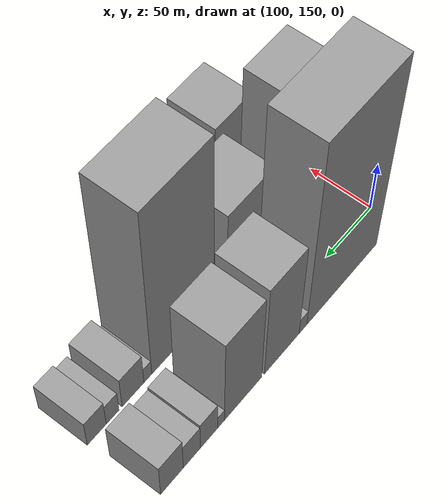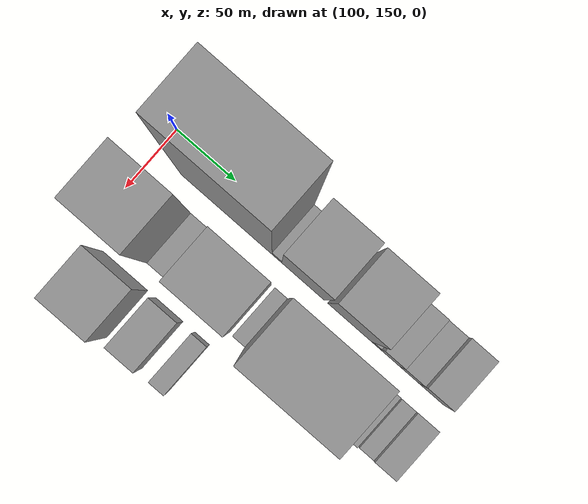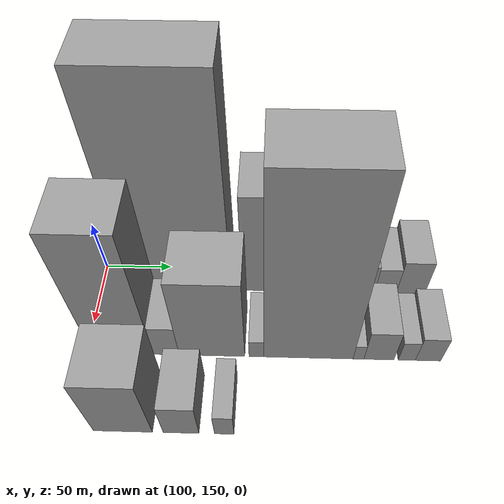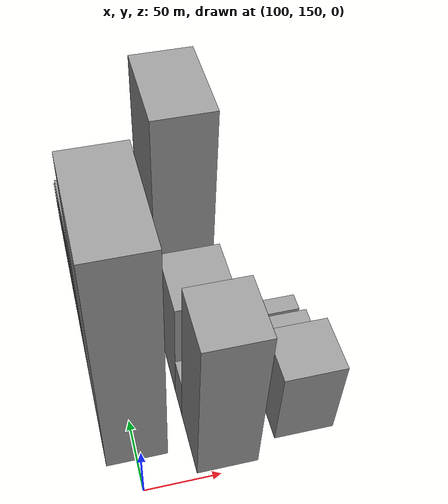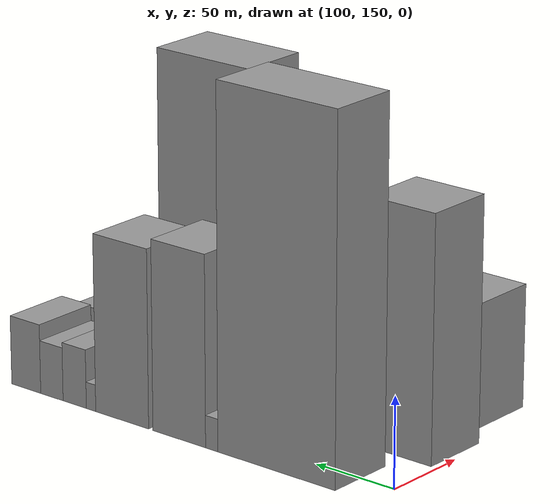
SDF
<sdf version="1.6">
 <world name="default">
  <model name="building_34">
   <static>1</static>
   <pose>100.0000 210.1831 0 0.000000 0.000000 0.000000</pose>
   <link name="link">
    <pose>0 0 99.00 0 0 0</pose>
    <collision name="collision"><geometry><box><size>40.0000 77.1794 198.0000</size></box></geometry></collision>
    <visual name="visual">
     <cast_shadows>0</cast_shadows>
     <geometry><box><size>40.0000 77.1794 198.0000</size></box></geometry>
     <material>
      <script>
       <uri>model://grey_wall/materials/scripts</uri>
       <uri>model://grey_wall/materials/textures</uri>
       <name>vrc/grey_wall</name>
      </script>
     </material>
    </visual>
   </link>
  </model>
  <model name="building_35">
   <static>1</static>
   <pose>100.0000 252.8782 0 0.000000 0.000000 0.000000</pose>
   <link name="link">
    <pose>0 0 9.00 0 0 0</pose>
    <collision name="collision"><geometry><box><size>40.0000 8.2108 18.0000</size></box></geometry></collision>
    <visual name="visual">
     <cast_shadows>0</cast_shadows>
     <geometry><box><size>40.0000 8.2108 18.0000</size></box></geometry>
     <material>
      <script>
       <uri>model://grey_wall/materials/scripts</uri>
       <uri>model://grey_wall/materials/textures</uri>
       <name>vrc/grey_wall</name>
      </script>
     </material>
    </visual>
   </link>
  </model>
  <model name="building_36">
   <static>1</static>
   <pose>100.0000 275.0869 0 0.000000 0.000000 0.000000</pose>
   <link name="link">
    <pose>0 0 52.50 0 0 0</pose>
    <collision name="collision"><geometry><box><size>40.0000 36.2067 105.0000</size></box></geometry></collision>
    <visual name="visual">
     <cast_shadows>0</cast_shadows>
     <geometry><box><size>40.0000 36.2067 105.0000</size></box></geometry>
     <material>
      <script>
       <uri>model://grey_wall/materials/scripts</uri>
       <uri>model://grey_wall/materials/textures</uri>
       <name>vrc/grey_wall</name>
      </script>
     </material>
    </visual>
   </link>
  </model>
  <model name="building_37">
   <static>1</static>
   <pose>100.0000 314.8873 0 0.000000 0.000000 0.000000</pose>
   <link name="link">
    <pose>0 0 49.50 0 0 0</pose>
    <collision name="collision"><geometry><box><size>40.0000 37.3941 99.0000</size></box></geometry></collision>
    <visual name="visual">
     <cast_shadows>0</cast_shadows>
     <geometry><box><size>40.0000 37.3941 99.0000</size></box></geometry>
     <material>
      <script>
       <uri>model://grey_wall/materials/scripts</uri>
       <uri>model://grey_wall/materials/textures</uri>
       <name>vrc/grey_wall</name>
      </script>
     </material>
    </visual>
   </link>
  </model>
  <model name="building_38">
   <static>1</static>
   <pose>100.0000 336.9596 0 0.000000 0.000000 0.000000</pose>
   <link name="link">
    <pose>0 0 7.50 0 0 0</pose>
    <collision name="collision"><geometry><box><size>40.0000 6.7504 15.0000</size></box></geometry></collision>
    <visual name="visual">
     <cast_shadows>0</cast_shadows>
     <geometry><box><size>40.0000 6.7504 15.0000</size></box></geometry>
     <material>
      <script>
       <uri>model://grey_wall/materials/scripts</uri>
       <uri>model://grey_wall/materials/textures</uri>
       <name>vrc/grey_wall</name>
      </script>
     </material>
    </visual>
   </link>
  </model>
  <model name="building_39">
   <static>1</static>
   <pose>100.0000 348.7307 0 0.000000 0.000000 0.000000</pose>
   <link name="link">
    <pose>0 0 16.50 0 0 0</pose>
    <collision name="collision"><geometry><box><size>40.0000 16.7919 33.0000</size></box></geometry></collision>
    <visual name="visual">
     <cast_shadows>0</cast_shadows>
     <geometry><box><size>40.0000 16.7919 33.0000</size></box></geometry>
     <material>
      <script>
       <uri>model://grey_wall/materials/scripts</uri>
       <uri>model://grey_wall/materials/textures</uri>
       <name>vrc/grey_wall</name>
      </script>
     </material>
    </visual>
   </link>
  </model>
  <model name="building_40">
   <static>1</static>
   <pose>100.0000 365.3119 0 0.000000 0.000000 0.000000</pose>
   <link name="link">
    <pose>0 0 15.00 0 0 0</pose>
    <collision name="collision"><geometry><box><size>40.0000 16.3705 30.0000</size></box></geometry></collision>
    <visual name="visual">
     <cast_shadows>0</cast_shadows>
     <geometry><box><size>40.0000 16.3705 30.0000</size></box></geometry>
     <material>
      <script>
       <uri>model://grey_wall/materials/scripts</uri>
       <uri>model://grey_wall/materials/textures</uri>
       <name>vrc/grey_wall</name>
      </script>
     </material>
    </visual>
   </link>
  </model>
  <model name="building_41">
   <static>1</static>
   <pose>100.0000 384.2088 0 0.000000 0.000000 0.000000</pose>
   <link name="link">
    <pose>0 0 19.50 0 0 0</pose>
    <collision name="collision"><geometry><box><size>40.0000 21.4233 39.0000</size></box></geometry></collision>
    <visual name="visual">
     <cast_shadows>0</cast_shadows>
     <geometry><box><size>40.0000 21.4233 39.0000</size></box></geometry>
     <material>
      <script>
       <uri>model://grey_wall/materials/scripts</uri>
       <uri>model://grey_wall/materials/textures</uri>
       <name>vrc/grey_wall</name>
      </script>
     </material>
    </visual>
   </link>
  </model>
  <model name="building_87">
   <static>1</static>
   <pose>155.0000 175.2452 0 0.000000 0.000000 0.000000</pose>
   <link name="link">
    <pose>0 0 67.50 0 0 0</pose>
    <collision name="collision"><geometry><box><size>40.0000 43.0318 135.0000</size></box></geometry></collision>
    <visual name="visual">
     <cast_shadows>0</cast_shadows>
     <geometry><box><size>40.0000 43.0318 135.0000</size></box></geometry>
     <material>
      <script>
       <uri>model://grey_wall/materials/scripts</uri>
       <uri>model://grey_wall/materials/textures</uri>
       <name>vrc/grey_wall</name>
      </script>
     </material>
    </visual>
   </link>
  </model>
  <model name="building_88">
   <static>1</static>
   <pose>155.0000 206.0267 0 0.000000 0.000000 0.000000</pose>
   <link name="link">
    <pose>0 0 18.00 0 0 0</pose>
    <collision name="collision"><geometry><box><size>40.0000 18.5311 36.0000</size></box></geometry></collision>
    <visual name="visual">
     <cast_shadows>0</cast_shadows>
     <geometry><box><size>40.0000 18.5311 36.0000</size></box></geometry>
     <material>
      <script>
       <uri>model://grey_wall/materials/scripts</uri>
       <uri>model://grey_wall/materials/textures</uri>
       <name>vrc/grey_wall</name>
      </script>
     </material>
    </visual>
   </link>
  </model>
  <model name="building_89">
   <static>1</static>
   <pose>155.0000 238.3310 0 0.000000 0.000000 0.000000</pose>
   <link name="link">
    <pose>0 0 45.00 0 0 0</pose>
    <collision name="collision"><geometry><box><size>40.0000 46.0777 90.0000</size></box></geometry></collision>
    <visual name="visual">
     <cast_shadows>0</cast_shadows>
     <geometry><box><size>40.0000 46.0777 90.0000</size></box></geometry>
     <material>
      <script>
       <uri>model://grey_wall/materials/scripts</uri>
       <uri>model://grey_wall/materials/textures</uri>
       <name>vrc/grey_wall</name>
      </script>
     </material>
    </visual>
   </link>
  </model>
  <model name="building_90">
   <static>1</static>
   <pose>155.0000 269.5385 0 0.000000 0.000000 0.000000</pose>
   <link name="link">
    <pose>0 0 10.50 0 0 0</pose>
    <collision name="collision"><geometry><box><size>40.0000 10.3374 21.0000</size></box></geometry></collision>
    <visual name="visual">
     <cast_shadows>0</cast_shadows>
     <geometry><box><size>40.0000 10.3374 21.0000</size></box></geometry>
     <material>
      <script>
       <uri>model://grey_wall/materials/scripts</uri>
       <uri>model://grey_wall/materials/textures</uri>
       <name>vrc/grey_wall</name>
      </script>
     </material>
    </visual>
   </link>
  </model>
  <model name="building_91">
   <static>1</static>
   <pose>155.0000 305.9449 0 0.000000 0.000000 0.000000</pose>
   <link name="link">
    <pose>0 0 93.00 0 0 0</pose>
    <collision name="collision"><geometry><box><size>40.0000 62.4753 186.0000</size></box></geometry></collision>
    <visual name="visual">
     <cast_shadows>0</cast_shadows>
     <geometry><box><size>40.0000 62.4753 186.0000</size></box></geometry>
     <material>
      <script>
       <uri>model://grey_wall/materials/scripts</uri>
       <uri>model://grey_wall/materials/textures</uri>
       <name>vrc/grey_wall</name>
      </script>
     </material>
    </visual>
   </link>
  </model>
  <model name="building_92">
   <static>1</static>
   <pose>155.0000 340.9703 0 0.000000 0.000000 0.000000</pose>
   <link name="link">
    <pose>0 0 9.00 0 0 0</pose>
    <collision name="collision"><geometry><box><size>40.0000 7.5755 18.0000</size></box></geometry></collision>
    <visual name="visual">
     <cast_shadows>0</cast_shadows>
     <geometry><box><size>40.0000 7.5755 18.0000</size></box></geometry>
     <material>
      <script>
       <uri>model://grey_wall/materials/scripts</uri>
       <uri>model://grey_wall/materials/textures</uri>
       <name>vrc/grey_wall</name>
      </script>
     </material>
    </visual>
   </link>
  </model>
  <model name="building_93">
   <static>1</static>
   <pose>155.0000 355.2063 0 0.000000 0.000000 0.000000</pose>
   <link name="link">
    <pose>0 0 18.00 0 0 0</pose>
    <collision name="collision"><geometry><box><size>40.0000 20.8964 36.0000</size></box></geometry></collision>
    <visual name="visual">
     <cast_shadows>0</cast_shadows>
     <geometry><box><size>40.0000 20.8964 36.0000</size></box></geometry>
     <material>
      <script>
       <uri>model://grey_wall/materials/scripts</uri>
       <uri>model://grey_wall/materials/textures</uri>
       <name>vrc/grey_wall</name>
      </script>
     </material>
    </visual>
   </link>
  </model>
  <model name="building_94">
   <static>1</static>
   <pose>155.0000 374.6204 0 0.000000 0.000000 0.000000</pose>
   <link name="link">
    <pose>0 0 12.00 0 0 0</pose>
    <collision name="collision"><geometry><box><size>40.0000 11.9318 24.0000</size></box></geometry></collision>
    <visual name="visual">
     <cast_shadows>0</cast_shadows>
     <geometry><box><size>40.0000 11.9318 24.0000</size></box></geometry>
     <material>
      <script>
       <uri>model://grey_wall/materials/scripts</uri>
       <uri>model://grey_wall/materials/textures</uri>
       <name>vrc/grey_wall</name>
      </script>
     </material>
    </visual>
   </link>
  </model>
  <model name="building_95">
   <static>1</static>
   <pose>155.0000 389.4227 0 0.000000 0.000000 0.000000</pose>
   <link name="link">
    <pose>0 0 15.00 0 0 0</pose>
    <collision name="collision"><geometry><box><size>40.0000 17.6727 30.0000</size></box></geometry></collision>
    <visual name="visual">
     <cast_shadows>0</cast_shadows>
     <geometry><box><size>40.0000 17.6727 30.0000</size></box></geometry>
     <material>
      <script>
       <uri>model://grey_wall/materials/scripts</uri>
       <uri>model://grey_wall/materials/textures</uri>
       <name>vrc/grey_wall</name>
      </script>
     </material>
    </visual>
   </link>
  </model>
  <model name="building_140">
   <static>1</static>
   <pose>210.0000 185.1663 0 0.000000 0.000000 0.000000</pose>
   <link name="link">
    <pose>0 0 34.50 0 0 0</pose>
    <collision name="collision"><geometry><box><size>40.0000 38.2198 69.0000</size></box></geometry></collision>
    <visual name="visual">
     <cast_shadows>0</cast_shadows>
     <geometry><box><size>40.0000 38.2198 69.0000</size></box></geometry>
     <material>
      <script>
       <uri>model://grey_wall/materials/scripts</uri>
       <uri>model://grey_wall/materials/textures</uri>
       <name>vrc/grey_wall</name>
      </script>
     </material>
    </visual>
   </link>
  </model>
  <model name="building_141">
   <static>1</static>
   <pose>210.0000 222.8262 0 0.000000 0.000000 0.000000</pose>
   <link name="link">
    <pose>0 0 19.50 0 0 0</pose>
    <collision name="collision"><geometry><box><size>40.0000 23.1000 39.0000</size></box></geometry></collision>
    <visual name="visual">
     <cast_shadows>0</cast_shadows>
     <geometry><box><size>40.0000 23.1000 39.0000</size></box></geometry>
     <material>
      <script>
       <uri>model://grey_wall/materials/scripts</uri>
       <uri>model://grey_wall/materials/textures</uri>
       <name>vrc/grey_wall</name>
      </script>
     </material>
    </visual>
   </link>
  </model>
  <model name="building_142">
   <static>1</static>
   <pose>210.0000 250.6755 0 0.000000 0.000000 0.000000</pose>
   <link name="link">
    <pose>0 0 13.50 0 0 0</pose>
    <collision name="collision"><geometry><box><size>40.0000 12.5986 27.0000</size></box></geometry></collision>
    <visual name="visual">
     <cast_shadows>0</cast_shadows>
     <geometry><box><size>40.0000 12.5986 27.0000</size></box></geometry>
     <material>
      <script>
       <uri>model://grey_wall/materials/scripts</uri>
       <uri>model://grey_wall/materials/textures</uri>
       <name>vrc/grey_wall</name>
      </script>
     </material>
    </visual>
   </link>
  </model>
 </world>
</sdf>
